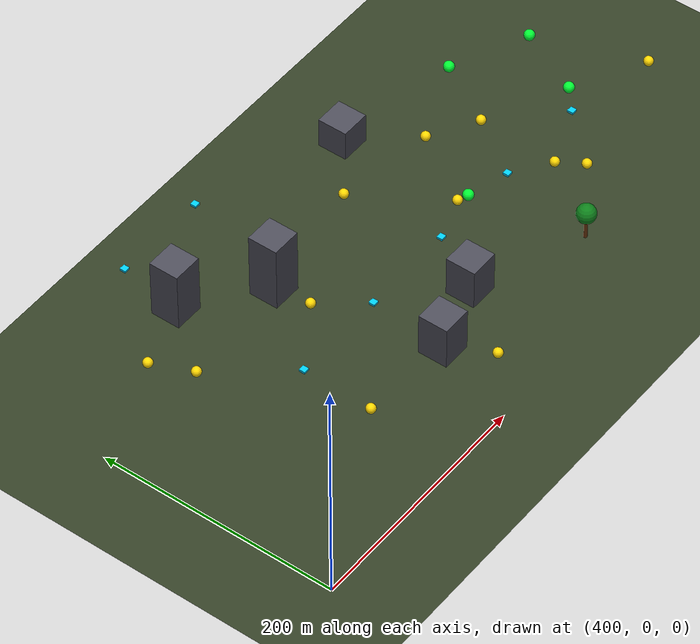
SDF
<sdf version="1.8">
 <world name="darar_world">
  <model name="ground_plane">
   <static>true</static>
   <pose>500 500 0 0 0 0</pose>
   <link name="link">
    <collision name="collision">
     <geometry><plane><normal>0 0 1</normal><size>1000 1000</size></plane></geometry>
    </collision>
    <visual name="visual">
     <geometry><plane><normal>0 0 1</normal><size>1000 1000</size></plane></geometry>
     <material><ambient>0.2 0.25 0.15 1</ambient><diffuse>0.2 0.25 0.15 1</diffuse></material>
    </visual>
   </link>
  </model>
  <model name="static_building_0">
   <static>true</static>
   <pose>625.5 72.5 18.7 0 0 0</pose>
   <link name="link">
    <visual name="vis">
     <geometry><box><size>25 25 37.4</size></box></geometry>
     <material><ambient>0.3 0.3 0.35 1</ambient><diffuse>0.3 0.3 0.35 1</diffuse></material>
    </visual>
   </link>
  </model>
  <model name="static_building_3">
   <static>true</static>
   <pose>540.4 248.4 25.8 0 0 0</pose>
   <link name="link">
    <visual name="vis">
     <geometry><box><size>25 25 51.5</size></box></geometry>
     <material><ambient>0.3 0.3 0.35 1</ambient><diffuse>0.3 0.3 0.35 1</diffuse></material>
    </visual>
   </link>
  </model>
  <model name="tree_3">
   <static>true</static>
   <pose>778.5 55.8 12.0 0 0 0</pose>
   <link name="link">
    <visual name="trunk">
     <geometry><cylinder><radius>1.5</radius><length>24.0</length></cylinder></geometry>
     <material><ambient>0.4 0.2 0.05 1</ambient></material>
    </visual>
    <visual name="canopy">
     <pose>0 0 12 0 0 0</pose>
     <geometry><sphere><radius>8.0</radius></sphere></geometry>
     <material><ambient>0.05 0.5 0.1 1</ambient></material>
    </visual>
   </link>
  </model>
  <model name="static_building_8">
   <static>true</static>
   <pose>684.1 91.2 17.6 0 0 0</pose>
   <link name="link">
    <visual name="vis">
     <geometry><box><size>25 25 35.3</size></box></geometry>
     <material><ambient>0.3 0.3 0.35 1</ambient><diffuse>0.3 0.3 0.35 1</diffuse></material>
    </visual>
   </link>
  </model>
  <model name="static_building_11">
   <static>true</static>
   <pose>598.2 204.0 28.9 0 0 0</pose>
   <link name="link">
    <visual name="vis">
     <geometry><box><size>25 25 57.8</size></box></geometry>
     <material><ambient>0.3 0.3 0.35 1</ambient><diffuse>0.3 0.3 0.35 1</diffuse></material>
    </visual>
   </link>
  </model>
  <model name="static_building_13">
   <static>true</static>
   <pose>748.4 256.1 13.2 0 0 0</pose>
   <link name="link">
    <visual name="vis">
     <geometry><box><size>25 25 26.4</size></box></geometry>
     <material><ambient>0.3 0.3 0.35 1</ambient><diffuse>0.3 0.3 0.35 1</diffuse></material>
    </visual>
   </link>
  </model>
  <model name="static_victim_6">
   <static>true</static>
   <pose>500.6 197.9 3.0 0 0 0</pose>
   <link name="link">
    <visual name="vis">
     <geometry><sphere><radius>4.0</radius></sphere></geometry>
     <material><ambient>1 0.84 0 1</ambient><diffuse>1 0.84 0 1</diffuse></material>
    </visual>
   </link>
  </model>
  <model name="static_victim_9">
   <static>true</static>
   <pose>602.4 173.7 3.0 0 0 0</pose>
   <link name="link">
    <visual name="vis">
     <geometry><sphere><radius>4.0</radius></sphere></geometry>
     <material><ambient>1 0.84 0 1</ambient><diffuse>1 0.84 0 1</diffuse></material>
    </visual>
   </link>
  </model>
  <model name="static_victim_19">
   <static>true</static>
   <pose>749.9 150.7 3.0 0 0 0</pose>
   <link name="link">
    <visual name="vis">
     <geometry><sphere><radius>4.0</radius></sphere></geometry>
     <material><ambient>1 0.84 0 1</ambient><diffuse>1 0.84 0 1</diffuse></material>
    </visual>
   </link>
  </model>
  <model name="static_victim_32">
   <static>true</static>
   <pose>838.1 96.6 3.0 0 0 0</pose>
   <link name="link">
    <visual name="vis">
     <geometry><sphere><radius>4.0</radius></sphere></geometry>
     <material><ambient>1 0.84 0 1</ambient><diffuse>1 0.84 0 1</diffuse></material>
    </visual>
   </link>
  </model>
  <model name="static_victim_37">
   <static>true</static>
   <pose>789.0 209.0 3.0 0 0 0</pose>
   <link name="link">
    <visual name="vis">
     <geometry><sphere><radius>4.0</radius></sphere></geometry>
     <material><ambient>1 0.84 0 1</ambient><diffuse>1 0.84 0 1</diffuse></material>
    </visual>
   </link>
  </model>
  <model name="static_victim_41">
   <static>true</static>
   <pose>955.1 122.5 3.0 0 0 0</pose>
   <link name="link">
    <visual name="vis">
     <geometry><sphere><radius>4.0</radius></sphere></geometry>
     <material><ambient>1 0.84 0 1</ambient><diffuse>1 0.84 0 1</diffuse></material>
    </visual>
   </link>
  </model>
  <model name="static_victim_48">
   <static>true</static>
   <pose>547.3 77.6 3.0 0 0 0</pose>
   <link name="link">
    <visual name="vis">
     <geometry><sphere><radius>4.0</radius></sphere></geometry>
     <material><ambient>1 0.84 0 1</ambient><diffuse>1 0.84 0 1</diffuse></material>
    </visual>
   </link>
  </model>
  <model name="static_victim_51">
   <static>true</static>
   <pose>827.8 186.3 3.0 0 0 0</pose>
   <link name="link">
    <visual name="vis">
     <geometry><sphere><radius>4.0</radius></sphere></geometry>
     <material><ambient>1 0.84 0 1</ambient><diffuse>1 0.84 0 1</diffuse></material>
    </visual>
   </link>
  </model>
  <model name="static_victim_52">
   <static>true</static>
   <pose>486.5 230.9 3.0 0 0 0</pose>
   <link name="link">
    <visual name="vis">
     <geometry><sphere><radius>4.0</radius></sphere></geometry>
     <material><ambient>1 0.84 0 1</ambient><diffuse>1 0.84 0 1</diffuse></material>
    </visual>
   </link>
  </model>
  <model name="static_victim_84">
   <static>true</static>
   <pose>644.7 37.4 3.0 0 0 0</pose>
   <link name="link">
    <visual name="vis">
     <geometry><sphere><radius>4.0</radius></sphere></geometry>
     <material><ambient>1 0.84 0 1</ambient><diffuse>1 0.84 0 1</diffuse></material>
    </visual>
   </link>
  </model>
  <model name="static_victim_90">
   <static>true</static>
   <pose>704.6 221.4 3.0 0 0 0</pose>
   <link name="link">
    <visual name="vis">
     <geometry><sphere><radius>4.0</radius></sphere></geometry>
     <material><ambient>1 0.84 0 1</ambient><diffuse>1 0.84 0 1</diffuse></material>
    </visual>
   </link>
  </model>
  <model name="static_victim_93">
   <static>true</static>
   <pose>825.3 116.8 3.0 0 0 0</pose>
   <link name="link">
    <visual name="vis">
     <geometry><sphere><radius>4.0</radius></sphere></geometry>
     <material><ambient>1 0.84 0 1</ambient><diffuse>1 0.84 0 1</diffuse></material>
    </visual>
   </link>
  </model>
  <model name="dynamic_victim_5">
   <pose>859.0 239.1 3.5 0 0 0</pose>
   <link name="link">
    <visual name="vis">
     <geometry><sphere><radius>4.5</radius></sphere></geometry>
     <material><ambient>0 1 0.2 1</ambient><diffuse>0 1 0.2 1</diffuse></material>
    </visual>
   </link>
   <plugin filename="gz-sim-velocity-control-system" name="gz::sim::systems::VelocityControl">
    <topic>/model/dynamic_victim_5/cmd_vel</topic>
   </plugin>
  </model>
  <model name="dynamic_victim_16">
   <pose>758.6 147.3 3.5 0 0 0</pose>
   <link name="link">
    <visual name="vis">
     <geometry><sphere><radius>4.5</radius></sphere></geometry>
     <material><ambient>0 1 0.2 1</ambient><diffuse>0 1 0.2 1</diffuse></material>
    </visual>
   </link>
   <plugin filename="gz-sim-velocity-control-system" name="gz::sim::systems::VelocityControl">
    <topic>/model/dynamic_victim_16/cmd_vel</topic>
   </plugin>
  </model>
  <model name="dynamic_victim_20">
   <pose>765.8 254.8 3.5 0 0 0</pose>
   <link name="link">
    <visual name="vis">
     <geometry><sphere><radius>4.5</radius></sphere></geometry>
     <material><ambient>0 1 0.2 1</ambient><diffuse>0 1 0.2 1</diffuse></material>
    </visual>
   </link>
   <plugin filename="gz-sim-velocity-control-system" name="gz::sim::systems::VelocityControl">
    <topic>/model/dynamic_victim_20/cmd_vel</topic>
   </plugin>
  </model>
  <model name="dynamic_victim_26">
   <pose>895.3 153.8 3.5 0 0 0</pose>
   <link name="link">
    <visual name="vis">
     <geometry><sphere><radius>4.5</radius></sphere></geometry>
     <material><ambient>0 1 0.2 1</ambient><diffuse>0 1 0.2 1</diffuse></material>
    </visual>
   </link>
   <plugin filename="gz-sim-velocity-control-system" name="gz::sim::systems::VelocityControl">
    <topic>/model/dynamic_victim_26/cmd_vel</topic>
   </plugin>
  </model>
  <model name="dynamic_victim_27">
   <pose>923.4 210.7 3.5 0 0 0</pose>
   <link name="link">
    <visual name="vis">
     <geometry><sphere><radius>4.5</radius></sphere></geometry>
     <material><ambient>0 1 0.2 1</ambient><diffuse>0 1 0.2 1</diffuse></material>
    </visual>
   </link>
   <plugin filename="gz-sim-velocity-control-system" name="gz::sim::systems::VelocityControl">
    <topic>/model/dynamic_victim_27/cmd_vel</topic>
   </plugin>
  </model>
  <model name="uav_5">
   <pose>500.0 100.0 70.0 0 0 0</pose>
   <link name="link">
    <visual name="vis">
     <geometry><box><size>5 5 1.8</size></box></geometry>
     <material><ambient>0 0.8 1 1</ambient><diffuse>0 0.8 1 1</diffuse></material>
    </visual>
   </link>
   <plugin filename="gz-sim-velocity-control-system" name="gz::sim::systems::VelocityControl">
    <topic>/model/uav_5/cmd_vel</topic>
   </plugin>
  </model>
  <model name="uav_6">
   <pose>580.0 100.0 70.0 0 0 0</pose>
   <link name="link">
    <visual name="vis">
     <geometry><box><size>5 5 1.8</size></box></geometry>
     <material><ambient>0 0.8 1 1</ambient><diffuse>0 0.8 1 1</diffuse></material>
    </visual>
   </link>
   <plugin filename="gz-sim-velocity-control-system" name="gz::sim::systems::VelocityControl">
    <topic>/model/uav_6/cmd_vel</topic>
   </plugin>
  </model>
  <model name="uav_7">
   <pose>660.0 100.0 70.0 0 0 0</pose>
   <link name="link">
    <visual name="vis">
     <geometry><box><size>5 5 1.8</size></box></geometry>
     <material><ambient>0 0.8 1 1</ambient><diffuse>0 0.8 1 1</diffuse></material>
    </visual>
   </link>
   <plugin filename="gz-sim-velocity-control-system" name="gz::sim::systems::VelocityControl">
    <topic>/model/uav_7/cmd_vel</topic>
   </plugin>
  </model>
  <model name="uav_8">
   <pose>740.0 100.0 70.0 0 0 0</pose>
   <link name="link">
    <visual name="vis">
     <geometry><box><size>5 5 1.8</size></box></geometry>
     <material><ambient>0 0.8 1 1</ambient><diffuse>0 0.8 1 1</diffuse></material>
    </visual>
   </link>
   <plugin filename="gz-sim-velocity-control-system" name="gz::sim::systems::VelocityControl">
    <topic>/model/uav_8/cmd_vel</topic>
   </plugin>
  </model>
  <model name="uav_9">
   <pose>820.0 100.0 70.0 0 0 0</pose>
   <link name="link">
    <visual name="vis">
     <geometry><box><size>5 5 1.8</size></box></geometry>
     <material><ambient>0 0.8 1 1</ambient><diffuse>0 0.8 1 1</diffuse></material>
    </visual>
   </link>
   <plugin filename="gz-sim-velocity-control-system" name="gz::sim::systems::VelocityControl">
    <topic>/model/uav_9/cmd_vel</topic>
   </plugin>
  </model>
  <model name="uav_15">
   <pose>500.0 260.0 70.0 0 0 0</pose>
   <link name="link">
    <visual name="vis">
     <geometry><box><size>5 5 1.8</size></box></geometry>
     <material><ambient>0 0.8 1 1</ambient><diffuse>0 0.8 1 1</diffuse></material>
    </visual>
   </link>
   <plugin filename="gz-sim-velocity-control-system" name="gz::sim::systems::VelocityControl">
    <topic>/model/uav_15/cmd_vel</topic>
   </plugin>
  </model>
  <model name="uav_16">
   <pose>580.0 260.0 70.0 0 0 0</pose>
   <link name="link">
    <visual name="vis">
     <geometry><box><size>5 5 1.8</size></box></geometry>
     <material><ambient>0 0.8 1 1</ambient><diffuse>0 0.8 1 1</diffuse></material>
    </visual>
   </link>
   <plugin filename="gz-sim-velocity-control-system" name="gz::sim::systems::VelocityControl">
    <topic>/model/uav_16/cmd_vel</topic>
   </plugin>
  </model>
 </world>
</sdf>
